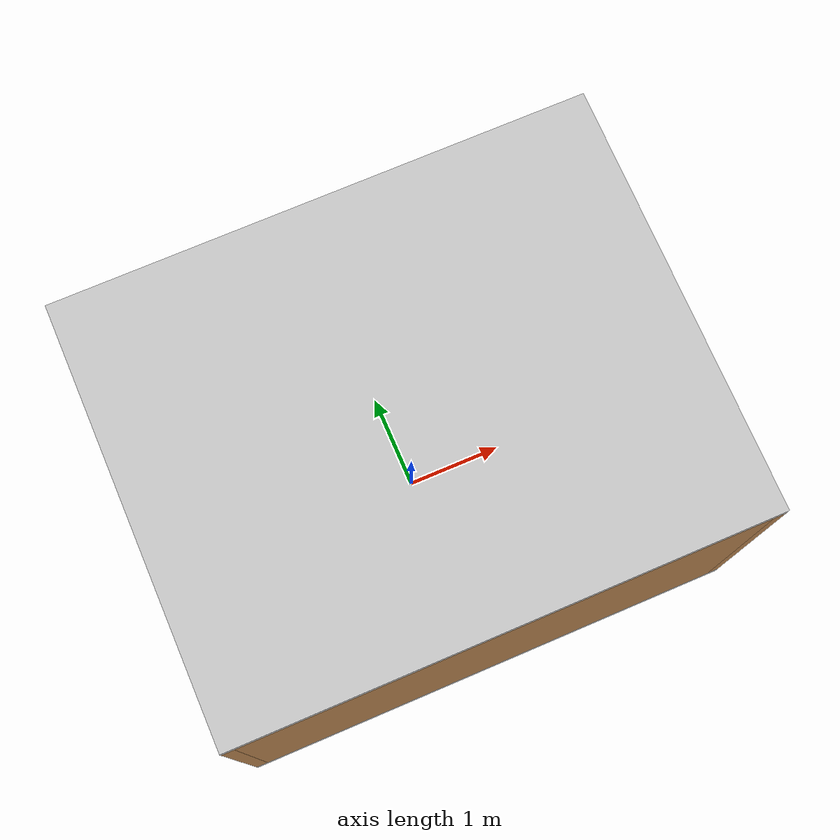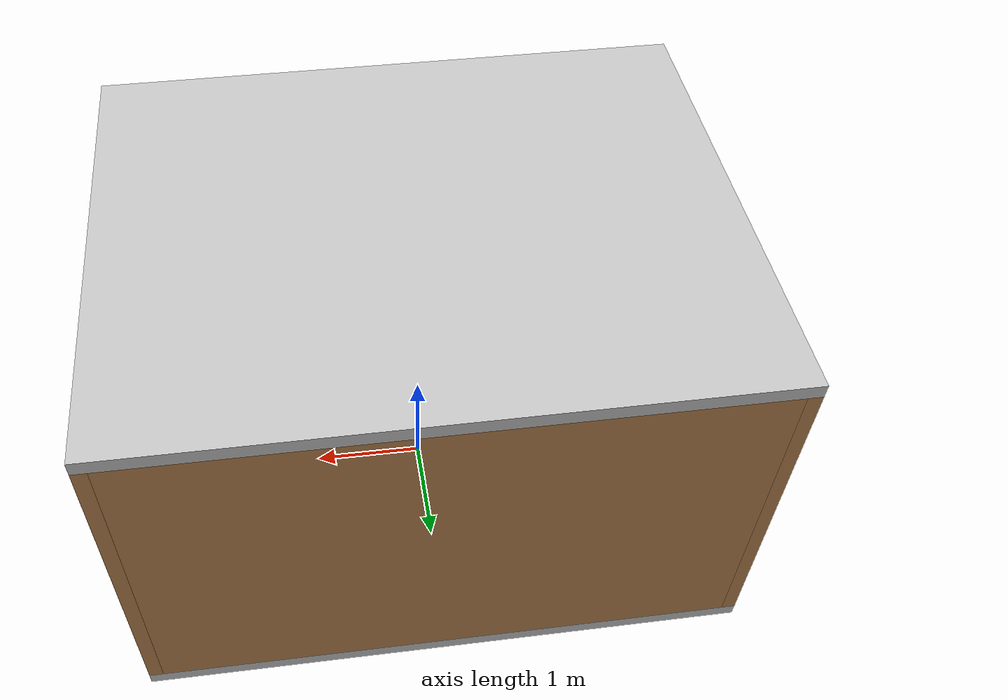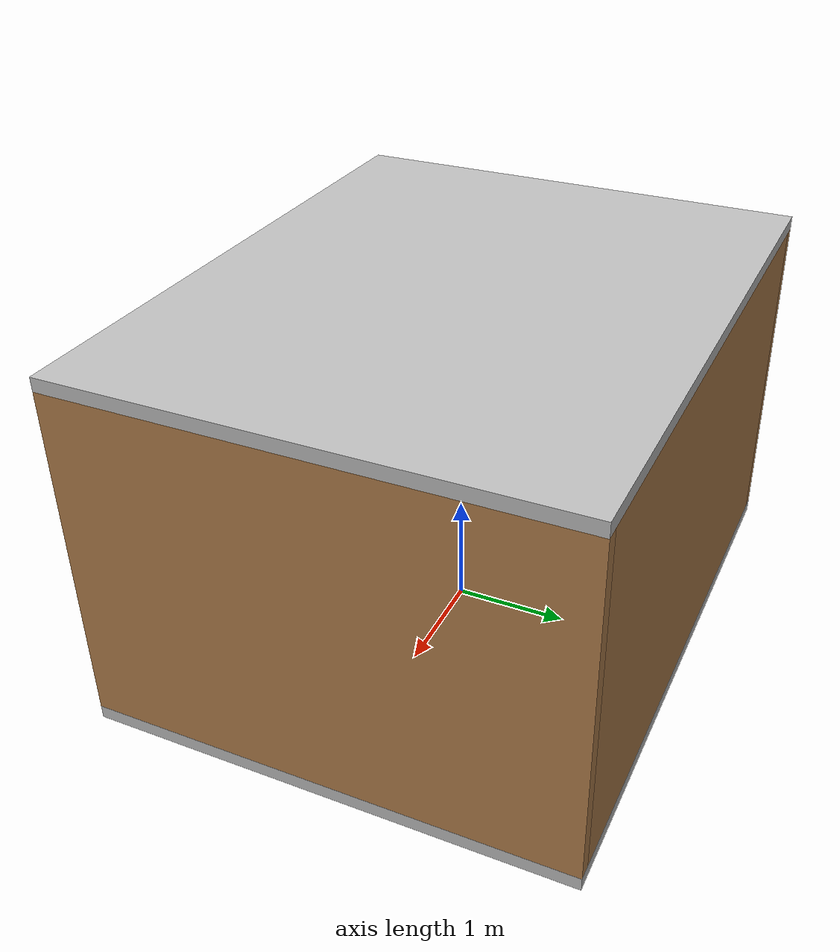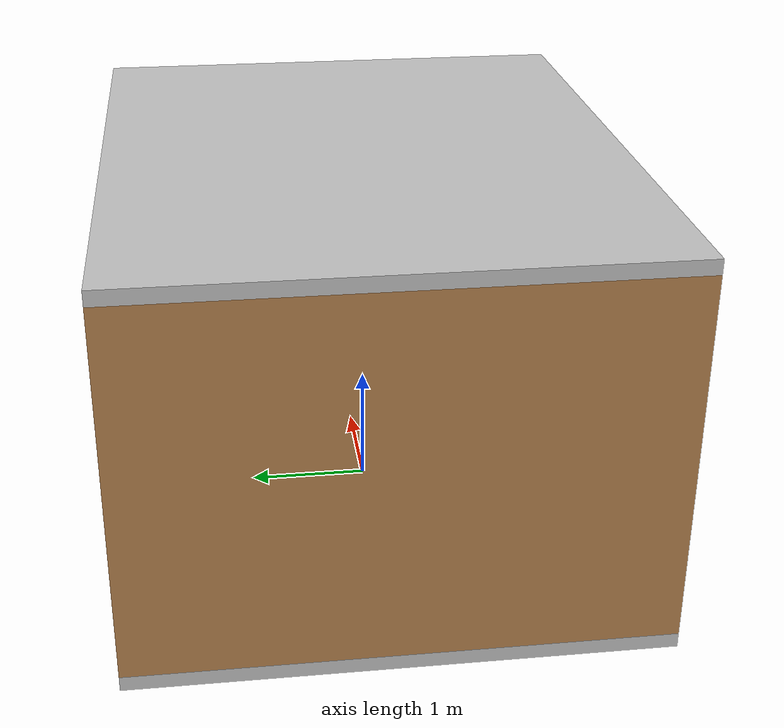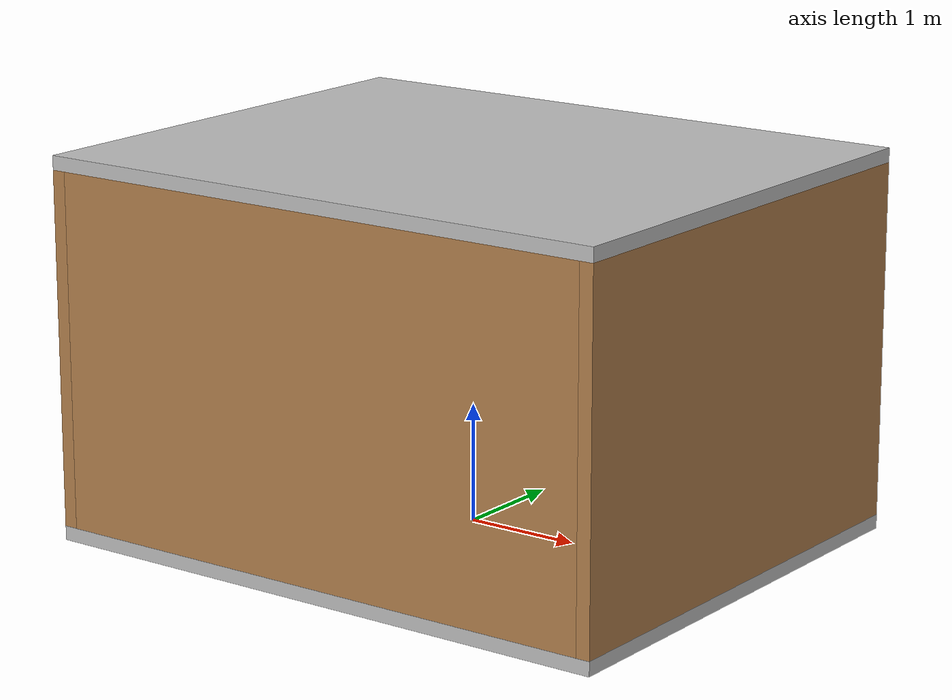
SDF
<sdf version="1.7">
 <world name="cangku_20sqm">
  <light name="sun" type="directional">
   <pose>0 0 10 0 -0 0</pose>
   <diffuse>0.8 0.8 0.8 1</diffuse>
   <specular>0.2 0.2 0.2 1</specular>
   <attenuation>
    <range>1000</range>
    <constant>0.9</constant>
    <linear>0.01</linear>
    <quadratic>0.001</quadratic>
   </attenuation>
   <direction>-0.5 0.1 -0.9</direction>
   <spot><inner_angle>0</inner_angle><outer_angle>0</outer_angle><falloff>0</falloff></spot>
  </light>
  <gravity>0 0 -9.8</gravity>
  <magnetic_field>6e-06 2.3e-05 -4.2e-05</magnetic_field>
  <atmosphere type="adiabatic"/>
  <physics type="ode">
   <max_step_size>0.001</max_step_size>
   <real_time_factor>1</real_time_factor>
   <real_time_update_rate>1000</real_time_update_rate>
  </physics>
  <scene><ambient>.65 .65 .65 1</ambient><background>0.7 0.7 0.7 1</background><shadows>1</shadows></scene>
  <spherical_coordinates>
   <surface_model>EARTH_WGS84</surface_model>
   <latitude_deg>0</latitude_deg>
   <longitude_deg>0</longitude_deg>
   <elevation>0</elevation>
   <heading_deg>0</heading_deg>
  </spherical_coordinates>
  <model name="warehouse_shell">
   <static>true</static>
   <link name="floor">
    <pose>0 0 -0.06 0 0 0</pose>
    <collision name="floor_collision"><geometry><box><size>5.24 4.24 0.12</size></box></geometry></collision>
    <visual name="floor_visual">
     <geometry><box><size>5.24 4.24 0.12</size></box></geometry>
     <material><ambient>.65 .65 .65 1</ambient><diffuse>.75 .75 .75 1</diffuse></material>
    </visual>
   </link>
   <link name="ceiling">
    <pose>0 0 3.06 0 0 0</pose>
    <collision name="ceiling_collision"><geometry><box><size>5.24 4.24 0.12</size></box></geometry></collision>
    <visual name="ceiling_visual">
     <geometry><box><size>5.24 4.24 0.12</size></box></geometry>
     <material><ambient>.65 .65 .65 1</ambient><diffuse>.75 .75 .75 1</diffuse></material>
    </visual>
   </link>
   <link name="west">
    <pose>-2.56 0 1.5 0 0 0</pose>
    <collision name="west_collision"><geometry><box><size>0.12 4.24 3.0</size></box></geometry></collision>
    <visual name="west_visual">
     <geometry><box><size>0.12 4.24 3.0</size></box></geometry>
     <material>
      <script><uri>file://media/materials/scripts/gazebo.material</uri><name>Gazebo/Wood</name></script>
      <ambient>1 1 1 1</ambient>
     </material>
    </visual>
   </link>
   <link name="east">
    <pose>2.56 0 1.5 0 0 0</pose>
    <collision name="east_collision"><geometry><box><size>0.12 4.24 3.0</size></box></geometry></collision>
    <visual name="east_visual">
     <geometry><box><size>0.12 4.24 3.0</size></box></geometry>
     <material>
      <script><uri>file://media/materials/scripts/gazebo.material</uri><name>Gazebo/Wood</name></script>
      <ambient>1 1 1 1</ambient>
     </material>
    </visual>
   </link>
   <link name="south">
    <pose>0 -2.06 1.5 0 0 0</pose>
    <collision name="south_collision"><geometry><box><size>5.0 0.12 3.0</size></box></geometry></collision>
    <visual name="south_visual">
     <geometry><box><size>5.0 0.12 3.0</size></box></geometry>
     <material>
      <script><uri>file://media/materials/scripts/gazebo.material</uri><name>Gazebo/Wood</name></script>
      <ambient>1 1 1 1</ambient>
     </material>
    </visual>
   </link>
   <link name="north">
    <pose>0 2.06 1.5 0 0 0</pose>
    <collision name="north_collision"><geometry><box><size>5.0 0.12 3.0</size></box></geometry></collision>
    <visual name="north_visual">
     <geometry><box><size>5.0 0.12 3.0</size></box></geometry>
     <material>
      <script><uri>file://media/materials/scripts/gazebo.material</uri><name>Gazebo/Wood</name></script>
      <ambient>1 1 1 1</ambient>
     </material>
    </visual>
   </link>
  </model>
 </world>
</sdf>
